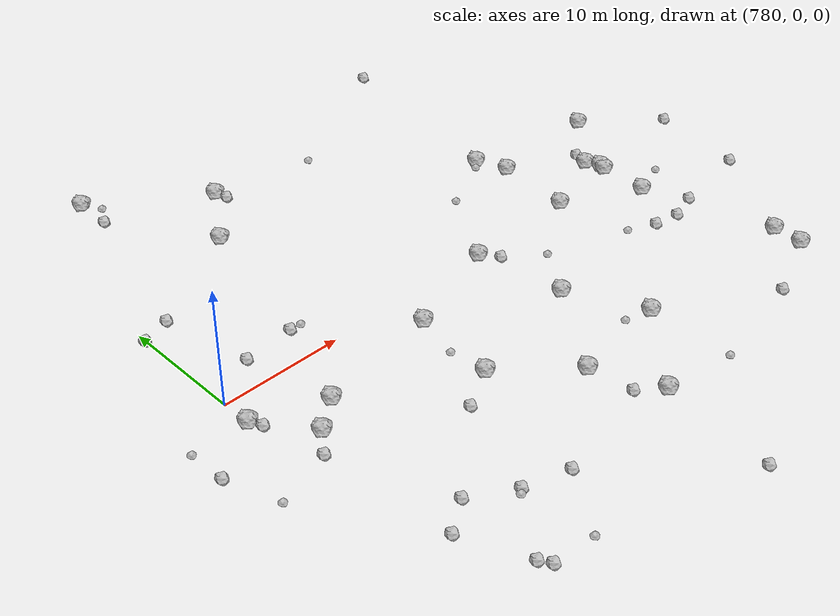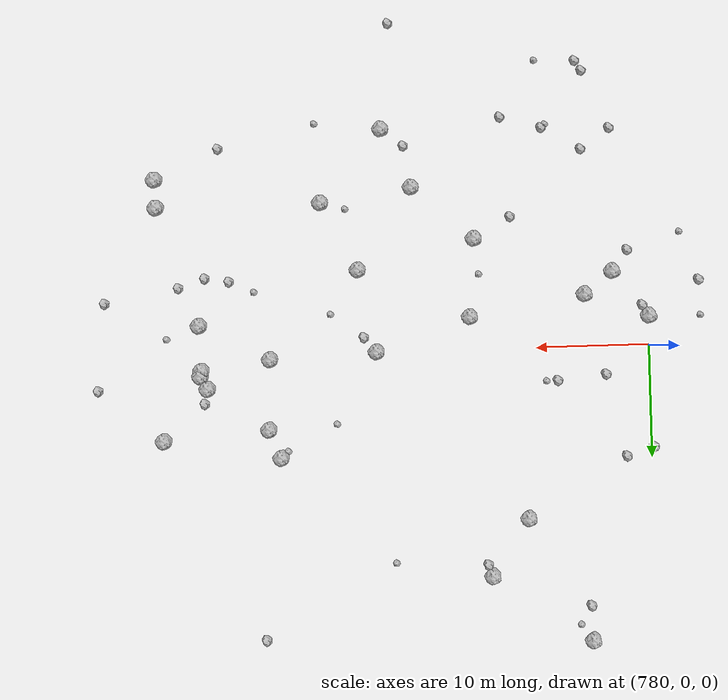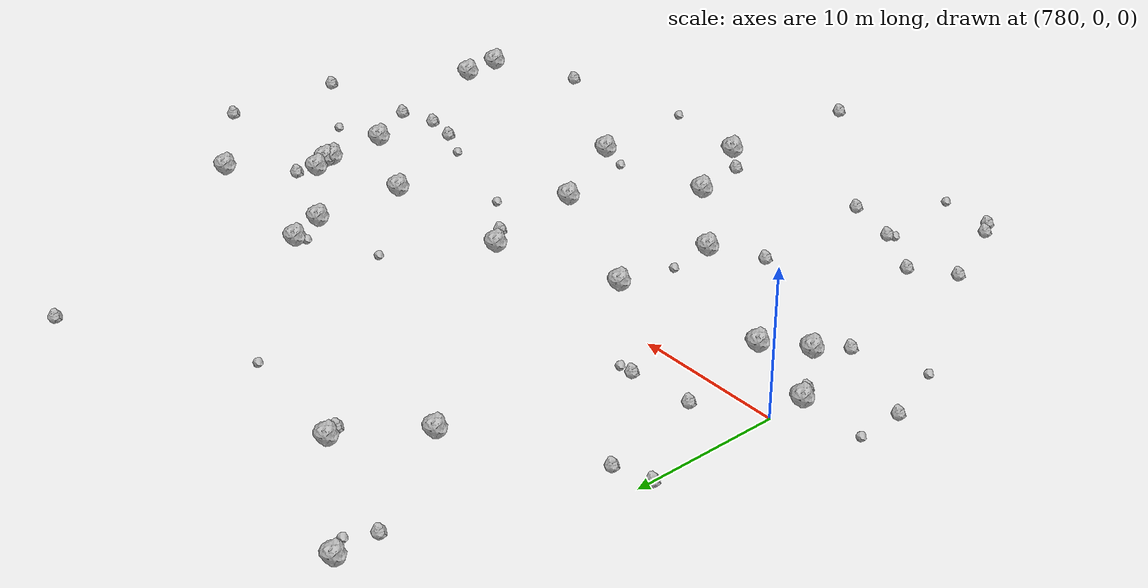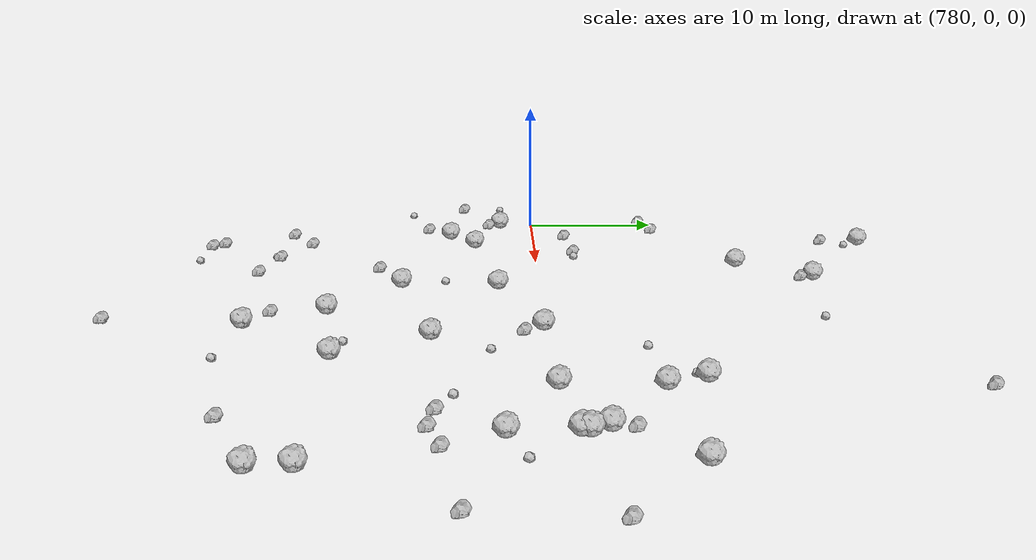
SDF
<sdf version="1.6">
 <world name="default">
  <include><uri>model://sun</uri></include>
  <model name="rock1_20_4">
   <include><uri>model://rock1</uri><pose>794.5539837292581 20.019781457009138 0.5 0 0 0</pose></include>
  </model>
  <model name="rock1_20_5">
   <include><uri>model://rock1</uri><pose>791.2113529485252 15.01504605989603 0.5 0 0 0</pose></include>
  </model>
  <model name="rock1_20_6">
   <include><uri>model://rock1</uri><pose>803.2294731162206 -19.788416599213505 0.5 0 0 0</pose></include>
  </model>
  <model name="rock1_20_7">
   <include><uri>model://rock1</uri><pose>804.206837933402 -0.1332970420928028 0.5 0 0 0</pose></include>
  </model>
  <model name="rock1_20_8">
   <include><uri>model://rock1</uri><pose>819.2330036040496 2.6986382795517514 0.5 0 0 0</pose></include>
  </model>
  <model name="rock1_20_9">
   <include><uri>model://rock1</uri><pose>819.7388628330332 1.0833887190261962 0.5 0 0 0</pose></include>
  </model>
  <model name="rock1_20_10">
   <include><uri>model://rock1</uri><pose>813.9201950685706 6.4611817960705125 0.5 0 0 0</pose></include>
  </model>
  <model name="rock1_20_11">
   <include><uri>model://rock1</uri><pose>795.3092816870468 -9.868489848852128 0.5 0 0 0</pose></include>
  </model>
  <model name="rock1_20_12">
   <include><uri>model://rock1</uri><pose>819.8279583892744 1.5546537237000422 0.5 0 0 0</pose></include>
  </model>
  <model name="rock1_20_13">
   <include><uri>model://rock1</uri><pose>819.8269284040085 -2.91153764306101 0.5 0 0 0</pose></include>
  </model>
  <model name="rock1_20_14">
   <include><uri>model://rock1</uri><pose>808.7633829676748 -13.44330895050026 0.5 0 0 0</pose></include>
  </model>
  <model name="rock1_20_15">
   <include><uri>model://rock1</uri><pose>823.3518701347091 -15.925634339766692 0.5 0 0 0</pose></include>
  </model>
  <model name="rock1_20_16">
   <include><uri>model://rock1</uri><pose>780.0683101649416 -2.5926770759223032 0.5 0 0 0</pose></include>
  </model>
  <model name="rock1_20_17">
   <include><uri>model://rock1</uri><pose>823.2984523859514 -13.447667300676247 0.5 0 0 0</pose></include>
  </model>
  <model name="rock1_20_18">
   <include><uri>model://rock1</uri><pose>785.8688250226007 25.94937523316225 0.5 0 0 0</pose></include>
  </model>
  <model name="rock1_20_19">
   <include><uri>model://rock1</uri><pose>795.8704171596387 -2.9688536639485967 0.5 0 0 0</pose></include>
  </model>
  <model name="rock1_20_20">
   <include><uri>model://rock1</uri><pose>813.6406780258153 0.25359520491597465 0.5 0 0 0</pose></include>
  </model>
  <model name="rock1_20_21">
   <include><uri>model://rock1</uri><pose>800.7127539093455 -14.575796090909726 0.5 0 0 0</pose></include>
  </model>
  <model name="rock1_20_22">
   <include><uri>model://rock1</uri><pose>783.1921731695517 -6.6268071856336235 0.5 0 0 0</pose></include>
  </model>
  <model name="rock1_20_23">
   <include><uri>model://rock1</uri><pose>823.2402212226688 7.196942350839535 0.5 0 0 0</pose></include>
  </model>
  <model name="rock1_20_24">
   <include><uri>model://rock1</uri><pose>812.9164232220501 8.9860492610063 0.5 0 0 0</pose></include>
  </model>
  <model name="rock1_20_25">
   <include><uri>model://rock1</uri><pose>785.6894736450333 -4.663867390825704 0.5 0 0 0</pose></include>
  </model>
  <model name="rock1_20_26">
   <include><uri>model://rock1</uri><pose>805.6421731407066 -7.417745894070336 0.5 0 0 0</pose></include>
  </model>
  <model name="rock2_20_0">
   <include><uri>model://rock2</uri><pose>785.2936242606883 -24.43495935203041 0.3 0 0 0</pose></include>
  </model>
  <model name="rock2_20_1">
   <include><uri>model://rock2</uri><pose>819.5197558805689 4.027633109365674 0.3 0 0 0</pose></include>
  </model>
  <model name="rock2_20_2">
   <include><uri>model://rock2</uri><pose>782.9990959921669 -19.288491318333758 0.3 0 0 0</pose></include>
  </model>
  <model name="rock2_20_3">
   <include><uri>model://rock2</uri><pose>817.6658318765565 -18.503413873314543 0.3 0 0 0</pose></include>
  </model>
  <model name="rock2_20_4">
   <include><uri>model://rock2</uri><pose>821.5412625225225 -6.29001290229105 0.3 0 0 0</pose></include>
  </model>
  <model name="rock2_20_5">
   <include><uri>model://rock2</uri><pose>780.5384835371442 -3.5154541300356676 0.3 0 0 0</pose></include>
  </model>
  <model name="rock2_20_6">
   <include><uri>model://rock2</uri><pose>785.8555439785952 -25.31345830809221 0.3 0 0 0</pose></include>
  </model>
  <model name="rock2_20_7">
   <include><uri>model://rock2</uri><pose>785.8530198518256 22.961989417546057 0.3 0 0 0</pose></include>
  </model>
  <model name="rock2_20_8">
   <include><uri>model://rock2</uri><pose>779.8541937189225 9.051554938384903 0.3 0 0 0</pose></include>
  </model>
  <model name="rock2_20_9">
   <include><uri>model://rock2</uri><pose>792.0065189843704 -11.695546694160427 0.3 0 0 0</pose></include>
  </model>
  <model name="rock2_20_10">
   <include><uri>model://rock2</uri><pose>775.4865648849983 -5.613512426069217 0.3 0 0 0</pose></include>
  </model>
  <model name="rock2_20_11">
   <include><uri>model://rock2</uri><pose>814.6947367033781 25.129779246682325 0.3 0 0 0</pose></include>
  </model>
  <model name="rock2_20_12">
   <include><uri>model://rock2</uri><pose>828.913778516742 2.5970641299829538 0.3 0 0 0</pose></include>
  </model>
  <model name="rock2_20_13">
   <include><uri>model://rock2</uri><pose>785.5715781936423 -17.490905549548707 0.3 0 0 0</pose></include>
  </model>
  <model name="rock2_20_14">
   <include><uri>model://rock2</uri><pose>805.2553779022986 -1.4101214271632294 0.3 0 0 0</pose></include>
  </model>
  <model name="rock2_20_15">
   <include><uri>model://rock2</uri><pose>794.8650227030151 19.0727827072474 0.3 0 0 0</pose></include>
  </model>
  <model name="rock2_20_16">
   <include><uri>model://rock2</uri><pose>828.117562760284 -5.1223408558754 0.3 0 0 0</pose></include>
  </model>
  <model name="rock2_20_17">
   <include><uri>model://rock2</uri><pose>792.6338380413403 -20.52854171671263 0.3 0 0 0</pose></include>
  </model>
  <model name="rock2_20_18">
   <include><uri>model://rock2</uri><pose>801.2587390991795 -18.255490006999885 0.3 0 0 0</pose></include>
  </model>
  <model name="rock2_20_19">
   <include><uri>model://rock2</uri><pose>782.2815970947292 9.82372620834014 0.3 0 0 0</pose></include>
  </model>
  <model name="rock2_20_20">
   <include><uri>model://rock2</uri><pose>781.7378846861554 -8.434484335519794 0.3 0 0 0</pose></include>
  </model>
  <model name="rock2_20_21">
   <include><uri>model://rock2</uri><pose>783.9098373906968 2.521500084289535 0.3 0 0 0</pose></include>
  </model>
  <model name="rock2_20_22">
   <include><uri>model://rock2</uri><pose>788.1943382239581 2.9459891225807766 0.3 0 0 0</pose></include>
  </model>
  <model name="rock2_20_23">
   <include><uri>model://rock2</uri><pose>789.0093804598453 -19.479291848849236 0.3 0 0 0</pose></include>
  </model>
  <model name="rock2_20_24">
   <include><uri>model://rock2</uri><pose>817.0533688681056 -6.719659508476802 0.3 0 0 0</pose></include>
  </model>
  <model name="rock2_20_25">
   <include><uri>model://rock2</uri><pose>819.1853341008475 -7.063638956747319 0.3 0 0 0</pose></include>
  </model>
  <model name="rock2_20_26">
   <include><uri>model://rock2</uri><pose>802.2668853591141 -29.130884310161868 0.3 0 0 0</pose></include>
  </model>
  <model name="rock3_20_0">
   <include><uri>model://rock3</uri><pose>822.7212167606679 -1.8195816295256009 0.2 0 0 0</pose></include>
  </model>
  <model name="rock3_20_1">
   <include><uri>model://rock3</uri><pose>814.8607216220612 -5.775220720161492 0.2 0 0 0</pose></include>
  </model>
  <model name="rock3_20_2">
   <include><uri>model://rock3</uri><pose>808.1312892218943 -3.5927514214488596 0.2 0 0 0</pose></include>
  </model>
  <model name="rock3_20_3">
   <include><uri>model://rock3</uri><pose>777.0412463285683 -9.9557634667695 0.2 0 0 0</pose></include>
  </model>
  <model name="rock3_20_4">
   <include><uri>model://rock3</uri><pose>806.5600766259769 -12.872779518534383 0.2 0 0 0</pose></include>
  </model>
  <model name="rock3_20_5">
   <include><uri>model://rock3</uri><pose>786.7833673981435 24.586410644098876 0.2 0 0 0</pose></include>
  </model>
  <model name="rock3_20_6">
   <include><uri>model://rock3</uri><pose>788.6353842959184 -19.836485980505305 0.2 0 0 0</pose></include>
  </model>
  <model name="rock3_20_7">
   <include><uri>model://rock3</uri><pose>809.0547812782191 -20.512560856727447 0.2 0 0 0</pose></include>
  </model>
  <model name="rock3_20_8">
   <include><uri>model://rock3</uri><pose>812.24947621034 8.430377467445602 0.2 0 0 0</pose></include>
  </model>
  <model name="rock3_20_9">
   <include><uri>model://rock3</uri><pose>802.9741429831138 18.627660760107595 0.2 0 0 0</pose></include>
  </model>
  <model name="rock3_20_10">
   <include><uri>model://rock3</uri><pose>794.9039889555531 -6.747269043538445 0.2 0 0 0</pose></include>
  </model>
  <model name="rock3_20_11">
   <include><uri>model://rock3</uri><pose>789.1640064541346 2.92204990431582 0.2 0 0 0</pose></include>
  </model>
  <model name="rock3_20_12">
   <include><uri>model://rock3</uri><pose>775.3748435825387 -2.5225203051197234 0.2 0 0 0</pose></include>
  </model>
  <model name="rock3_20_13">
   <include><uri>model://rock3</uri><pose>789.4047412515043 -25.520804691340462 0.2 0 0 0</pose></include>
  </model>
  <model name="rock3_20_14">
   <include><uri>model://rock3</uri><pose>807.8404315128975 6.157380263600146 0.2 0 0 0</pose></include>
  </model>
 </world>
</sdf>
